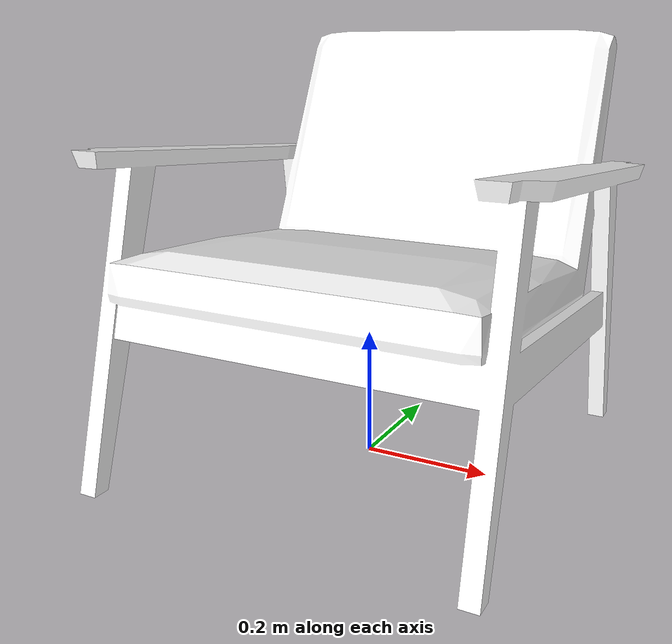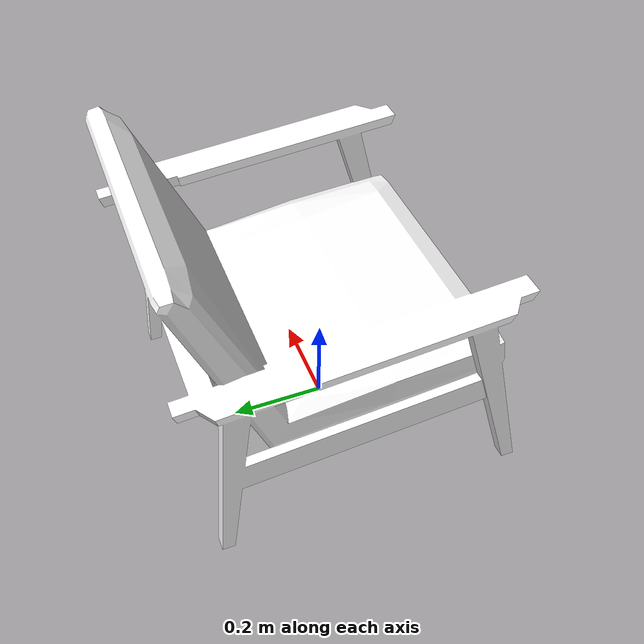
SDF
<?xml version="1.0" encoding="UTF-8"?>
<sdf version="1.6">
  <model name="Armchair">
    <static>true</static>
    <link name="base_link">
      <visual name="visual">
        <geometry>
          <mesh>
            <uri>meshes/armchair.dae</uri>
          </mesh>
        </geometry>
        <material>
          <diffuse>1.0 1.0 1.0</diffuse>
          <specular>1.0 1.0 1.0</specular>
          <pbr>
            <metal>
              <albedo_map>materials/textures/Armchair_Albedo.png</albedo_map>
              <normal_map>materials/textures/Armchair_Normal.png</normal_map>
              <roughness_map>materials/textures/Armchair_Roughness.png</roughness_map>
            </metal>
          </pbr>
        </material>
      </visual>
      <collision name="Box001">
        <pose>0.0 0.261949 0.460133 -0.384212 0.0 0.0</pose>
        <geometry>
          <box>
            <size>0.631431 0.0699235 0.445858</size>
          </box>
        </geometry>
      </collision>
      <collision name="Box003">
        <pose>0.0 -0.0236233 0.268079 1.47249 0.0 0.0</pose>
        <geometry>
          <box>
            <size>0.631431 0.130198 0.491702</size>
          </box>
        </geometry>
      </collision>
      <collision name="Box004">
        <pose>-0.29402 0.291571 0.221926 -3.0538 0.0 0.0</pose>
        <geometry>
          <box>
            <size>0.0315716 0.038458 0.445858</size>
          </box>
        </geometry>
      </collision>
      <collision name="Box005">
        <pose>-0.29402 -0.242078 0.24347 2.87267 0.0 0.0</pose>
        <geometry>
          <box>
            <size>0.0315716 0.038458 0.50382</size>
          </box>
        </geometry>
      </collision>
      <collision name="Box006">
        <pose>-0.312721 0.0406857 0.462906 1.48645 0.0 0.0</pose>
        <geometry>
          <box>
            <size>0.0754561 0.038458 0.67008</size>
          </box>
        </geometry>
      </collision>
      <collision name="Box007">
        <pose>0.29402 0.291571 0.221926 -3.0538 0.0 0.0</pose>
        <geometry>
          <box>
            <size>0.0315716 0.038458 0.445858</size>
          </box>
        </geometry>
      </collision>
      <collision name="Box008">
        <pose>0.29402 -0.242078 0.24347 2.87267 0.0 0.0</pose>
        <geometry>
          <box>
            <size>0.0315716 0.038458 0.50382</size>
          </box>
        </geometry>
      </collision>
      <collision name="Box009">
        <pose>0.31272 0.0406857 0.462906 1.48645 0.0 0.0</pose>
        <geometry>
          <box>
            <size>0.0754561 0.038458 0.67008</size>
          </box>
        </geometry>
      </collision>
      <collision name="Box010">
        <pose>-0.000554919 0.305595 0.439838 -0.0833634 0.0 0.0</pose>
        <geometry>
          <box>
            <size>0.591172 0.0720425 0.0233079</size>
          </box>
        </geometry>
      </collision>
    </link>
  </model>
</sdf>
